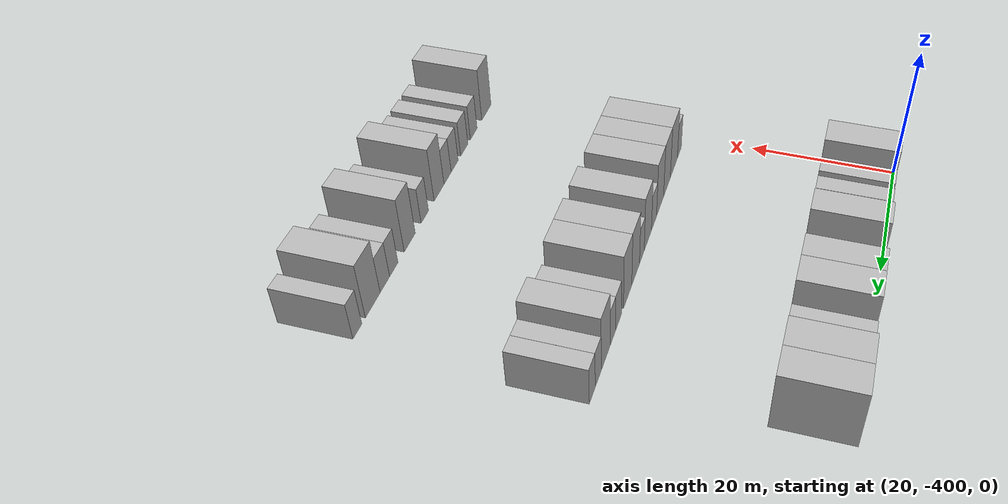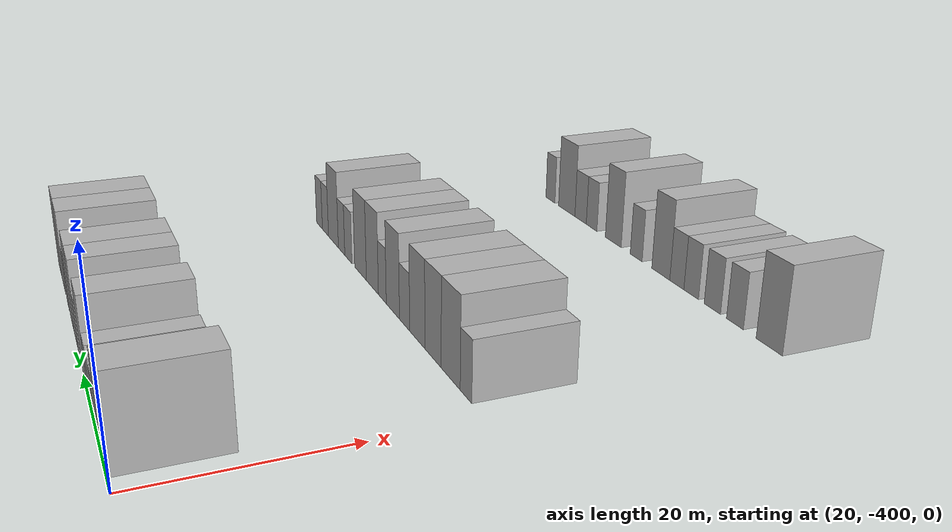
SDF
<sdf version="1.6">
 <world name="default">
  <model name="building_15">
   <static>1</static>
   <pose>25.0000 -395.5426 0 0.000000 0.000000 0.000000</pose>
   <link name="link">
    <pose>0 0 4.50 0 0 0</pose>
    <collision name="collision"><geometry><box><size>10.0000 4.4853 9.0000</size></box></geometry></collision>
    <visual name="visual">
     <cast_shadows>0</cast_shadows>
     <geometry><box><size>10.0000 4.4853 9.0000</size></box></geometry>
     <material>
      <script>
       <uri>model://HANNAS_wall/materials/scripts</uri>
       <uri>model://HANNAS_wall/materials/textures</uri>
       <name>vrc/HANNAS_wall</name>
      </script>
     </material>
    </visual>
   </link>
  </model>
  <model name="building_16">
   <static>1</static>
   <pose>25.0000 -391.8419 0 0.000000 0.000000 0.000000</pose>
   <link name="link">
    <pose>0 0 3.00 0 0 0</pose>
    <collision name="collision"><geometry><box><size>10.0000 2.9162 6.0000</size></box></geometry></collision>
    <visual name="visual">
     <cast_shadows>0</cast_shadows>
     <geometry><box><size>10.0000 2.9162 6.0000</size></box></geometry>
     <material>
      <script>
       <uri>model://HANNAS_wall/materials/scripts</uri>
       <uri>model://HANNAS_wall/materials/textures</uri>
       <name>vrc/HANNAS_wall</name>
      </script>
     </material>
    </visual>
   </link>
  </model>
  <model name="building_17">
   <static>1</static>
   <pose>25.0000 -388.0962 0 0.000000 0.000000 0.000000</pose>
   <link name="link">
    <pose>0 0 3.00 0 0 0</pose>
    <collision name="collision"><geometry><box><size>10.0000 2.5751 6.0000</size></box></geometry></collision>
    <visual name="visual">
     <cast_shadows>0</cast_shadows>
     <geometry><box><size>10.0000 2.5751 6.0000</size></box></geometry>
     <material>
      <script>
       <uri>model://HANNAS_wall/materials/scripts</uri>
       <uri>model://HANNAS_wall/materials/textures</uri>
       <name>vrc/HANNAS_wall</name>
      </script>
     </material>
    </visual>
   </link>
  </model>
  <model name="building_18">
   <static>1</static>
   <pose>25.0000 -385.5317 0 0.000000 0.000000 0.000000</pose>
   <link name="link">
    <pose>0 0 3.00 0 0 0</pose>
    <collision name="collision"><geometry><box><size>10.0000 2.5539 6.0000</size></box></geometry></collision>
    <visual name="visual">
     <cast_shadows>0</cast_shadows>
     <geometry><box><size>10.0000 2.5539 6.0000</size></box></geometry>
     <material>
      <script>
       <uri>model://HANNAS_wall/materials/scripts</uri>
       <uri>model://HANNAS_wall/materials/textures</uri>
       <name>vrc/HANNAS_wall</name>
      </script>
     </material>
    </visual>
   </link>
  </model>
  <model name="building_19">
   <static>1</static>
   <pose>25.0000 -381.2378 0 0.000000 0.000000 0.000000</pose>
   <link name="link">
    <pose>0 0 4.50 0 0 0</pose>
    <collision name="collision"><geometry><box><size>10.0000 4.0340 9.0000</size></box></geometry></collision>
    <visual name="visual">
     <cast_shadows>0</cast_shadows>
     <geometry><box><size>10.0000 4.0340 9.0000</size></box></geometry>
     <material>
      <script>
       <uri>model://HANNAS_wall/materials/scripts</uri>
       <uri>model://HANNAS_wall/materials/textures</uri>
       <name>vrc/HANNAS_wall</name>
      </script>
     </material>
    </visual>
   </link>
  </model>
  <model name="building_20">
   <static>1</static>
   <pose>25.0000 -376.0046 0 0.000000 0.000000 0.000000</pose>
   <link name="link">
    <pose>0 0 3.00 0 0 0</pose>
    <collision name="collision"><geometry><box><size>10.0000 2.4324 6.0000</size></box></geometry></collision>
    <visual name="visual">
     <cast_shadows>0</cast_shadows>
     <geometry><box><size>10.0000 2.4324 6.0000</size></box></geometry>
     <material>
      <script>
       <uri>model://HANNAS_wall/materials/scripts</uri>
       <uri>model://HANNAS_wall/materials/textures</uri>
       <name>vrc/HANNAS_wall</name>
      </script>
     </material>
    </visual>
   </link>
  </model>
  <model name="building_21">
   <static>1</static>
   <pose>25.0000 -372.8886 0 0.000000 0.000000 0.000000</pose>
   <link name="link">
    <pose>0 0 4.50 0 0 0</pose>
    <collision name="collision"><geometry><box><size>10.0000 3.7996 9.0000</size></box></geometry></collision>
    <visual name="visual">
     <cast_shadows>0</cast_shadows>
     <geometry><box><size>10.0000 3.7996 9.0000</size></box></geometry>
     <material>
      <script>
       <uri>model://HANNAS_wall/materials/scripts</uri>
       <uri>model://HANNAS_wall/materials/textures</uri>
       <name>vrc/HANNAS_wall</name>
      </script>
     </material>
    </visual>
   </link>
  </model>
  <model name="building_22">
   <static>1</static>
   <pose>25.0000 -368.8407 0 0.000000 0.000000 0.000000</pose>
   <link name="link">
    <pose>0 0 4.50 0 0 0</pose>
    <collision name="collision"><geometry><box><size>10.0000 4.2962 9.0000</size></box></geometry></collision>
    <visual name="visual">
     <cast_shadows>0</cast_shadows>
     <geometry><box><size>10.0000 4.2962 9.0000</size></box></geometry>
     <material>
      <script>
       <uri>model://HANNAS_wall/materials/scripts</uri>
       <uri>model://HANNAS_wall/materials/textures</uri>
       <name>vrc/HANNAS_wall</name>
      </script>
     </material>
    </visual>
   </link>
  </model>
  <model name="building_23">
   <static>1</static>
   <pose>25.0000 -364.3743 0 0.000000 0.000000 0.000000</pose>
   <link name="link">
    <pose>0 0 3.00 0 0 0</pose>
    <collision name="collision"><geometry><box><size>10.0000 2.6366 6.0000</size></box></geometry></collision>
    <visual name="visual">
     <cast_shadows>0</cast_shadows>
     <geometry><box><size>10.0000 2.6366 6.0000</size></box></geometry>
     <material>
      <script>
       <uri>model://HANNAS_wall/materials/scripts</uri>
       <uri>model://HANNAS_wall/materials/textures</uri>
       <name>vrc/HANNAS_wall</name>
      </script>
     </material>
    </visual>
   </link>
  </model>
  <model name="building_24">
   <static>1</static>
   <pose>25.0000 -358.8417 0 0.000000 0.000000 0.000000</pose>
   <link name="link">
    <pose>0 0 4.50 0 0 0</pose>
    <collision name="collision"><geometry><box><size>10.0000 4.4285 9.0000</size></box></geometry></collision>
    <visual name="visual">
     <cast_shadows>0</cast_shadows>
     <geometry><box><size>10.0000 4.4285 9.0000</size></box></geometry>
     <material>
      <script>
       <uri>model://HANNAS_wall/materials/scripts</uri>
       <uri>model://HANNAS_wall/materials/textures</uri>
       <name>vrc/HANNAS_wall</name>
      </script>
     </material>
    </visual>
   </link>
  </model>
  <model name="building_25">
   <static>1</static>
   <pose>25.0000 -354.4156 0 0.000000 0.000000 0.000000</pose>
   <link name="link">
    <pose>0 0 4.50 0 0 0</pose>
    <collision name="collision"><geometry><box><size>10.0000 4.4237 9.0000</size></box></geometry></collision>
    <visual name="visual">
     <cast_shadows>0</cast_shadows>
     <geometry><box><size>10.0000 4.4237 9.0000</size></box></geometry>
     <material>
      <script>
       <uri>model://HANNAS_wall/materials/scripts</uri>
       <uri>model://HANNAS_wall/materials/textures</uri>
       <name>vrc/HANNAS_wall</name>
      </script>
     </material>
    </visual>
   </link>
  </model>
  <model name="building_248">
   <static>1</static>
   <pose>55.0000 -396.1064 0 0.000000 0.000000 0.000000</pose>
   <link name="link">
    <pose>0 0 3.00 0 0 0</pose>
    <collision name="collision"><geometry><box><size>10.0000 2.5538 6.0000</size></box></geometry></collision>
    <visual name="visual">
     <cast_shadows>0</cast_shadows>
     <geometry><box><size>10.0000 2.5538 6.0000</size></box></geometry>
     <material>
      <script>
       <uri>model://HANNAS_wall/materials/scripts</uri>
       <uri>model://HANNAS_wall/materials/textures</uri>
       <name>vrc/HANNAS_wall</name>
      </script>
     </material>
    </visual>
   </link>
  </model>
  <model name="building_249">
   <static>1</static>
   <pose>55.0000 -392.6102 0 0.000000 0.000000 0.000000</pose>
   <link name="link">
    <pose>0 0 4.50 0 0 0</pose>
    <collision name="collision"><geometry><box><size>10.0000 4.4385 9.0000</size></box></geometry></collision>
    <visual name="visual">
     <cast_shadows>0</cast_shadows>
     <geometry><box><size>10.0000 4.4385 9.0000</size></box></geometry>
     <material>
      <script>
       <uri>model://HANNAS_wall/materials/scripts</uri>
       <uri>model://HANNAS_wall/materials/textures</uri>
       <name>vrc/HANNAS_wall</name>
      </script>
     </material>
    </visual>
   </link>
  </model>
  <model name="building_250">
   <static>1</static>
   <pose>55.0000 -388.3559 0 0.000000 0.000000 0.000000</pose>
   <link name="link">
    <pose>0 0 4.50 0 0 0</pose>
    <collision name="collision"><geometry><box><size>10.0000 4.0701 9.0000</size></box></geometry></collision>
    <visual name="visual">
     <cast_shadows>0</cast_shadows>
     <geometry><box><size>10.0000 4.0701 9.0000</size></box></geometry>
     <material>
      <script>
       <uri>model://HANNAS_wall/materials/scripts</uri>
       <uri>model://HANNAS_wall/materials/textures</uri>
       <name>vrc/HANNAS_wall</name>
      </script>
     </material>
    </visual>
   </link>
  </model>
  <model name="building_251">
   <static>1</static>
   <pose>55.0000 -384.2782 0 0.000000 0.000000 0.000000</pose>
   <link name="link">
    <pose>0 0 4.50 0 0 0</pose>
    <collision name="collision"><geometry><box><size>10.0000 4.0853 9.0000</size></box></geometry></collision>
    <visual name="visual">
     <cast_shadows>0</cast_shadows>
     <geometry><box><size>10.0000 4.0853 9.0000</size></box></geometry>
     <material>
      <script>
       <uri>model://HANNAS_wall/materials/scripts</uri>
       <uri>model://HANNAS_wall/materials/textures</uri>
       <name>vrc/HANNAS_wall</name>
      </script>
     </material>
    </visual>
   </link>
  </model>
  <model name="building_252">
   <static>1</static>
   <pose>55.0000 -380.7908 0 0.000000 0.000000 0.000000</pose>
   <link name="link">
    <pose>0 0 3.00 0 0 0</pose>
    <collision name="collision"><geometry><box><size>10.0000 2.8896 6.0000</size></box></geometry></collision>
    <visual name="visual">
     <cast_shadows>0</cast_shadows>
     <geometry><box><size>10.0000 2.8896 6.0000</size></box></geometry>
     <material>
      <script>
       <uri>model://HANNAS_wall/materials/scripts</uri>
       <uri>model://HANNAS_wall/materials/textures</uri>
       <name>vrc/HANNAS_wall</name>
      </script>
     </material>
    </visual>
   </link>
  </model>
  <model name="building_253">
   <static>1</static>
   <pose>55.0000 -377.3785 0 0.000000 0.000000 0.000000</pose>
   <link name="link">
    <pose>0 0 4.50 0 0 0</pose>
    <collision name="collision"><geometry><box><size>10.0000 3.9350 9.0000</size></box></geometry></collision>
    <visual name="visual">
     <cast_shadows>0</cast_shadows>
     <geometry><box><size>10.0000 3.9350 9.0000</size></box></geometry>
     <material>
      <script>
       <uri>model://HANNAS_wall/materials/scripts</uri>
       <uri>model://HANNAS_wall/materials/textures</uri>
       <name>vrc/HANNAS_wall</name>
      </script>
     </material>
    </visual>
   </link>
  </model>
  <model name="building_254">
   <static>1</static>
   <pose>55.0000 -374.1814 0 0.000000 0.000000 0.000000</pose>
   <link name="link">
    <pose>0 0 3.00 0 0 0</pose>
    <collision name="collision"><geometry><box><size>10.0000 2.4592 6.0000</size></box></geometry></collision>
    <visual name="visual">
     <cast_shadows>0</cast_shadows>
     <geometry><box><size>10.0000 2.4592 6.0000</size></box></geometry>
     <material>
      <script>
       <uri>model://HANNAS_wall/materials/scripts</uri>
       <uri>model://HANNAS_wall/materials/textures</uri>
       <name>vrc/HANNAS_wall</name>
      </script>
     </material>
    </visual>
   </link>
  </model>
  <model name="building_255">
   <static>1</static>
   <pose>55.0000 -370.9761 0 0.000000 0.000000 0.000000</pose>
   <link name="link">
    <pose>0 0 4.50 0 0 0</pose>
    <collision name="collision"><geometry><box><size>10.0000 3.9515 9.0000</size></box></geometry></collision>
    <visual name="visual">
     <cast_shadows>0</cast_shadows>
     <geometry><box><size>10.0000 3.9515 9.0000</size></box></geometry>
     <material>
      <script>
       <uri>model://HANNAS_wall/materials/scripts</uri>
       <uri>model://HANNAS_wall/materials/textures</uri>
       <name>vrc/HANNAS_wall</name>
      </script>
     </material>
    </visual>
   </link>
  </model>
  <model name="building_256">
   <static>1</static>
   <pose>55.0000 -366.9697 0 0.000000 0.000000 0.000000</pose>
   <link name="link">
    <pose>0 0 4.50 0 0 0</pose>
    <collision name="collision"><geometry><box><size>10.0000 4.0612 9.0000</size></box></geometry></collision>
    <visual name="visual">
     <cast_shadows>0</cast_shadows>
     <geometry><box><size>10.0000 4.0612 9.0000</size></box></geometry>
     <material>
      <script>
       <uri>model://HANNAS_wall/materials/scripts</uri>
       <uri>model://HANNAS_wall/materials/textures</uri>
       <name>vrc/HANNAS_wall</name>
      </script>
     </material>
    </visual>
   </link>
  </model>
  <model name="building_257">
   <static>1</static>
   <pose>55.0000 -362.6147 0 0.000000 0.000000 0.000000</pose>
   <link name="link">
    <pose>0 0 3.00 0 0 0</pose>
    <collision name="collision"><geometry><box><size>10.0000 2.6487 6.0000</size></box></geometry></collision>
    <visual name="visual">
     <cast_shadows>0</cast_shadows>
     <geometry><box><size>10.0000 2.6487 6.0000</size></box></geometry>
     <material>
      <script>
       <uri>model://HANNAS_wall/materials/scripts</uri>
       <uri>model://HANNAS_wall/materials/textures</uri>
       <name>vrc/HANNAS_wall</name>
      </script>
     </material>
    </visual>
   </link>
  </model>
  <model name="building_258">
   <static>1</static>
   <pose>55.0000 -360.0639 0 0.000000 0.000000 0.000000</pose>
   <link name="link">
    <pose>0 0 3.00 0 0 0</pose>
    <collision name="collision"><geometry><box><size>10.0000 2.4530 6.0000</size></box></geometry></collision>
    <visual name="visual">
     <cast_shadows>0</cast_shadows>
     <geometry><box><size>10.0000 2.4530 6.0000</size></box></geometry>
     <material>
      <script>
       <uri>model://HANNAS_wall/materials/scripts</uri>
       <uri>model://HANNAS_wall/materials/textures</uri>
       <name>vrc/HANNAS_wall</name>
      </script>
     </material>
    </visual>
   </link>
  </model>
  <model name="building_259">
   <static>1</static>
   <pose>55.0000 -356.8669 0 0.000000 0.000000 0.000000</pose>
   <link name="link">
    <pose>0 0 4.50 0 0 0</pose>
    <collision name="collision"><geometry><box><size>10.0000 3.9409 9.0000</size></box></geometry></collision>
    <visual name="visual">
     <cast_shadows>0</cast_shadows>
     <geometry><box><size>10.0000 3.9409 9.0000</size></box></geometry>
     <material>
      <script>
       <uri>model://HANNAS_wall/materials/scripts</uri>
       <uri>model://HANNAS_wall/materials/textures</uri>
       <name>vrc/HANNAS_wall</name>
      </script>
     </material>
    </visual>
   </link>
  </model>
  <model name="building_260">
   <static>1</static>
   <pose>55.0000 -353.6289 0 0.000000 0.000000 0.000000</pose>
   <link name="link">
    <pose>0 0 3.00 0 0 0</pose>
    <collision name="collision"><geometry><box><size>10.0000 2.5351 6.0000</size></box></geometry></collision>
    <visual name="visual">
     <cast_shadows>0</cast_shadows>
     <geometry><box><size>10.0000 2.5351 6.0000</size></box></geometry>
     <material>
      <script>
       <uri>model://HANNAS_wall/materials/scripts</uri>
       <uri>model://HANNAS_wall/materials/textures</uri>
       <name>vrc/HANNAS_wall</name>
      </script>
     </material>
    </visual>
   </link>
  </model>
  <model name="building_261">
   <static>1</static>
   <pose>55.0000 -351.1201 0 0.000000 0.000000 0.000000</pose>
   <link name="link">
    <pose>0 0 3.00 0 0 0</pose>
    <collision name="collision"><geometry><box><size>10.0000 2.4823 6.0000</size></box></geometry></collision>
    <visual name="visual">
     <cast_shadows>0</cast_shadows>
     <geometry><box><size>10.0000 2.4823 6.0000</size></box></geometry>
     <material>
      <script>
       <uri>model://HANNAS_wall/materials/scripts</uri>
       <uri>model://HANNAS_wall/materials/textures</uri>
       <name>vrc/HANNAS_wall</name>
      </script>
     </material>
    </visual>
   </link>
  </model>
  <model name="building_459">
   <static>1</static>
   <pose>85.0000 -397.6826 0 0.000000 0.000000 0.000000</pose>
   <link name="link">
    <pose>0 0 4.50 0 0 0</pose>
    <collision name="collision"><geometry><box><size>10.0000 3.9622 9.0000</size></box></geometry></collision>
    <visual name="visual">
     <cast_shadows>0</cast_shadows>
     <geometry><box><size>10.0000 3.9622 9.0000</size></box></geometry>
     <material>
      <script>
       <uri>model://HANNAS_wall/materials/scripts</uri>
       <uri>model://HANNAS_wall/materials/textures</uri>
       <name>vrc/HANNAS_wall</name>
      </script>
     </material>
    </visual>
   </link>
  </model>
  <model name="building_460">
   <static>1</static>
   <pose>85.0000 -392.3170 0 0.000000 0.000000 0.000000</pose>
   <link name="link">
    <pose>0 0 3.00 0 0 0</pose>
    <collision name="collision"><geometry><box><size>10.0000 2.7690 6.0000</size></box></geometry></collision>
    <visual name="visual">
     <cast_shadows>0</cast_shadows>
     <geometry><box><size>10.0000 2.7690 6.0000</size></box></geometry>
     <material>
      <script>
       <uri>model://HANNAS_wall/materials/scripts</uri>
       <uri>model://HANNAS_wall/materials/textures</uri>
       <name>vrc/HANNAS_wall</name>
      </script>
     </material>
    </visual>
   </link>
  </model>
  <model name="building_461">
   <static>1</static>
   <pose>85.0000 -388.5080 0 0.000000 0.000000 0.000000</pose>
   <link name="link">
    <pose>0 0 3.00 0 0 0</pose>
    <collision name="collision"><geometry><box><size>10.0000 2.8488 6.0000</size></box></geometry></collision>
    <visual name="visual">
     <cast_shadows>0</cast_shadows>
     <geometry><box><size>10.0000 2.8488 6.0000</size></box></geometry>
     <material>
      <script>
       <uri>model://HANNAS_wall/materials/scripts</uri>
       <uri>model://HANNAS_wall/materials/textures</uri>
       <name>vrc/HANNAS_wall</name>
      </script>
     </material>
    </visual>
   </link>
  </model>
  <model name="building_462">
   <static>1</static>
   <pose>85.0000 -384.7372 0 0.000000 0.000000 0.000000</pose>
   <link name="link">
    <pose>0 0 3.00 0 0 0</pose>
    <collision name="collision"><geometry><box><size>10.0000 2.6928 6.0000</size></box></geometry></collision>
    <visual name="visual">
     <cast_shadows>0</cast_shadows>
     <geometry><box><size>10.0000 2.6928 6.0000</size></box></geometry>
     <material>
      <script>
       <uri>model://HANNAS_wall/materials/scripts</uri>
       <uri>model://HANNAS_wall/materials/textures</uri>
       <name>vrc/HANNAS_wall</name>
      </script>
     </material>
    </visual>
   </link>
  </model>
  <model name="building_463">
   <static>1</static>
   <pose>85.0000 -382.0454 0 0.000000 0.000000 0.000000</pose>
   <link name="link">
    <pose>0 0 3.00 0 0 0</pose>
    <collision name="collision"><geometry><box><size>10.0000 2.6907 6.0000</size></box></geometry></collision>
    <visual name="visual">
     <cast_shadows>0</cast_shadows>
     <geometry><box><size>10.0000 2.6907 6.0000</size></box></geometry>
     <material>
      <script>
       <uri>model://HANNAS_wall/materials/scripts</uri>
       <uri>model://HANNAS_wall/materials/textures</uri>
       <name>vrc/HANNAS_wall</name>
      </script>
     </material>
    </visual>
   </link>
  </model>
  <model name="building_464">
   <static>1</static>
   <pose>85.0000 -378.8991 0 0.000000 0.000000 0.000000</pose>
   <link name="link">
    <pose>0 0 4.50 0 0 0</pose>
    <collision name="collision"><geometry><box><size>10.0000 3.6019 9.0000</size></box></geometry></collision>
    <visual name="visual">
     <cast_shadows>0</cast_shadows>
     <geometry><box><size>10.0000 3.6019 9.0000</size></box></geometry>
     <material>
      <script>
       <uri>model://HANNAS_wall/materials/scripts</uri>
       <uri>model://HANNAS_wall/materials/textures</uri>
       <name>vrc/HANNAS_wall</name>
      </script>
     </material>
    </visual>
   </link>
  </model>
  <model name="building_465">
   <static>1</static>
   <pose>85.0000 -373.8190 0 0.000000 0.000000 0.000000</pose>
   <link name="link">
    <pose>0 0 3.00 0 0 0</pose>
    <collision name="collision"><geometry><box><size>10.0000 2.5583 6.0000</size></box></geometry></collision>
    <visual name="visual">
     <cast_shadows>0</cast_shadows>
     <geometry><box><size>10.0000 2.5583 6.0000</size></box></geometry>
     <material>
      <script>
       <uri>model://HANNAS_wall/materials/scripts</uri>
       <uri>model://HANNAS_wall/materials/textures</uri>
       <name>vrc/HANNAS_wall</name>
      </script>
     </material>
    </visual>
   </link>
  </model>
  <model name="building_466">
   <static>1</static>
   <pose>85.0000 -368.7201 0 0.000000 0.000000 0.000000</pose>
   <link name="link">
    <pose>0 0 4.50 0 0 0</pose>
    <collision name="collision"><geometry><box><size>10.0000 3.6394 9.0000</size></box></geometry></collision>
    <visual name="visual">
     <cast_shadows>0</cast_shadows>
     <geometry><box><size>10.0000 3.6394 9.0000</size></box></geometry>
     <material>
      <script>
       <uri>model://HANNAS_wall/materials/scripts</uri>
       <uri>model://HANNAS_wall/materials/textures</uri>
       <name>vrc/HANNAS_wall</name>
      </script>
     </material>
    </visual>
   </link>
  </model>
  <model name="building_467">
   <static>1</static>
   <pose>85.0000 -363.5960 0 0.000000 0.000000 0.000000</pose>
   <link name="link">
    <pose>0 0 3.00 0 0 0</pose>
    <collision name="collision"><geometry><box><size>10.0000 2.6089 6.0000</size></box></geometry></collision>
    <visual name="visual">
     <cast_shadows>0</cast_shadows>
     <geometry><box><size>10.0000 2.6089 6.0000</size></box></geometry>
     <material>
      <script>
       <uri>model://HANNAS_wall/materials/scripts</uri>
       <uri>model://HANNAS_wall/materials/textures</uri>
       <name>vrc/HANNAS_wall</name>
      </script>
     </material>
    </visual>
   </link>
  </model>
  <model name="building_468">
   <static>1</static>
   <pose>85.0000 -360.8447 0 0.000000 0.000000 0.000000</pose>
   <link name="link">
    <pose>0 0 3.00 0 0 0</pose>
    <collision name="collision"><geometry><box><size>10.0000 2.8936 6.0000</size></box></geometry></collision>
    <visual name="visual">
     <cast_shadows>0</cast_shadows>
     <geometry><box><size>10.0000 2.8936 6.0000</size></box></geometry>
     <material>
      <script>
       <uri>model://HANNAS_wall/materials/scripts</uri>
       <uri>model://HANNAS_wall/materials/textures</uri>
       <name>vrc/HANNAS_wall</name>
      </script>
     </material>
    </visual>
   </link>
  </model>
  <model name="building_469">
   <static>1</static>
   <pose>85.0000 -357.2218 0 0.000000 0.000000 0.000000</pose>
   <link name="link">
    <pose>0 0 4.50 0 0 0</pose>
    <collision name="collision"><geometry><box><size>10.0000 4.3522 9.0000</size></box></geometry></collision>
    <visual name="visual">
     <cast_shadows>0</cast_shadows>
     <geometry><box><size>10.0000 4.3522 9.0000</size></box></geometry>
     <material>
      <script>
       <uri>model://HANNAS_wall/materials/scripts</uri>
       <uri>model://HANNAS_wall/materials/textures</uri>
       <name>vrc/HANNAS_wall</name>
      </script>
     </material>
    </visual>
   </link>
  </model>
  <model name="building_470">
   <static>1</static>
   <pose>85.0000 -352.7876 0 0.000000 0.000000 0.000000</pose>
   <link name="link">
    <pose>0 0 3.00 0 0 0</pose>
    <collision name="collision"><geometry><box><size>10.0000 2.5160 6.0000</size></box></geometry></collision>
    <visual name="visual">
     <cast_shadows>0</cast_shadows>
     <geometry><box><size>10.0000 2.5160 6.0000</size></box></geometry>
     <material>
      <script>
       <uri>model://HANNAS_wall/materials/scripts</uri>
       <uri>model://HANNAS_wall/materials/textures</uri>
       <name>vrc/HANNAS_wall</name>
      </script>
     </material>
    </visual>
   </link>
  </model>
 </world>
</sdf>
